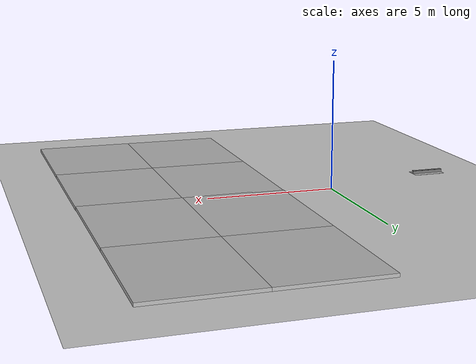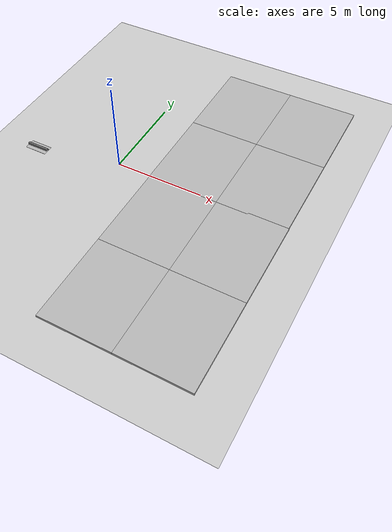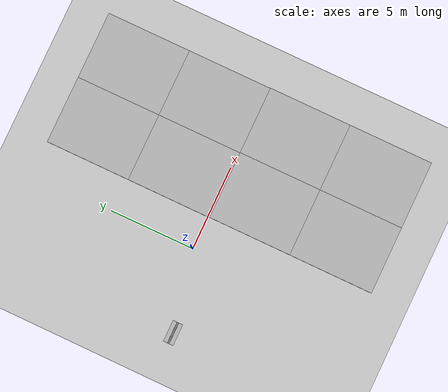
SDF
<sdf version="1.7">
 <world name="default">
  <light name="sun" type="directional">
   <pose>0 0 10 0 -0 0</pose>
   <diffuse>0.8 0.8 0.8 1</diffuse>
   <specular>0.2 0.2 0.2 1</specular>
   <attenuation>
    <range>1000</range>
    <constant>0.9</constant>
    <linear>0.01</linear>
    <quadratic>0.001</quadratic>
   </attenuation>
   <direction>-0.5 0.1 -0.9</direction>
   <spot><inner_angle>0</inner_angle><outer_angle>0</outer_angle><falloff>0</falloff></spot>
  </light>
  <model name="ground_plane">
   <static>1</static>
   <link name="link">
    <collision name="collision">
     <geometry><plane><normal>0 0 1</normal><size>100 100</size></plane></geometry>
     <surface><friction><ode><mu>100</mu><mu2>50</mu2></ode></friction></surface>
    </collision>
    <visual name="visual">
     <cast_shadows>0</cast_shadows>
     <geometry><plane><normal>0 0 1</normal><size>100 100</size></plane></geometry>
     <material>
      <script><uri>file://media/materials/scripts/gazebo.material</uri><name>Gazebo/Grey</name></script>
     </material>
    </visual>
   </link>
  </model>
  <gravity>0 0 -9.8</gravity>
  <magnetic_field>6e-06 2.3e-05 -4.2e-05</magnetic_field>
  <atmosphere type="adiabatic"/>
  <physics type="ode">
   <max_step_size>0.001</max_step_size>
   <real_time_factor>1</real_time_factor>
   <real_time_update_rate>1000</real_time_update_rate>
  </physics>
  <scene><ambient>0.4 0.4 0.4 1</ambient><background>0.7 0.7 0.7 1</background><shadows>1</shadows></scene>
  <audio><device>default</device></audio>
  <spherical_coordinates>
   <surface_model>EARTH_WGS84</surface_model>
   <latitude_deg>0</latitude_deg>
   <longitude_deg>0</longitude_deg>
   <elevation>0</elevation>
   <heading_deg>0</heading_deg>
  </spherical_coordinates>
  <model name="frc2016_rockwall">
   <static>1</static>
   <link name="link">
    <inertial>
     <mass>10</mass>
     <pose>0 0 0.08974 0 -0 0</pose>
     <inertia><ixx>0.327091</ixx><ixy>0</ixy><ixz>0</ixz><iyy>1.37417</iyy><iyz>0</iyz><izz>1.64109</izz></inertia>
    </inertial>
    <visual name="platform">
     <pose>0 0 0.06432 0 -0 0</pose>
     <geometry><box><size>1.27 0.5969 0.003175</size></box></geometry>
    </visual>
    <collision name="platform">
     <pose>0 0 0.06432 0 -0 0</pose>
     <geometry><box><size>1.27 0.5969 0.003175</size></box></geometry>
    </collision>
    <visual name="up1">
     <pose>0 0.05166 0.12537 0 -0 0</pose>
     <geometry><box><size>1.27 0.00462 0.11892</size></box></geometry>
     <material><ambient>0.46 0.46 0.46 1</ambient><diffuse>0.46 0.46 0.46 1</diffuse></material>
    </visual>
    <collision name="up1">
     <pose>0 0.05166 0.12537 0 -0 0</pose>
     <geometry><box><size>1.27 0.00462 0.11892</size></box></geometry>
    </collision>
    <visual name="up2">
     <pose>0 -0.05801 0.12537 0 -0 0</pose>
     <geometry><box><size>1.27 0.00462 0.11892</size></box></geometry>
     <material><ambient>0.46 0.46 0.46 1</ambient><diffuse>0.46 0.46 0.46 1</diffuse></material>
    </visual>
    <collision name="up2">
     <pose>0 -0.05801 0.12537 0 -0 0</pose>
     <geometry><box><size>1.27 0.00462 0.11892</size></box></geometry>
    </collision>
    <visual name="top">
     <pose>0 -0.00249 0.18252 0 -0 0</pose>
     <geometry><box><size>1.27 0.1143 0.00462</size></box></geometry>
     <material><ambient>0.46 0.46 0.46 1</ambient><diffuse>0.46 0.46 0.46 1</diffuse></material>
    </visual>
    <collision name="top">
     <pose>0 -0.00249 0.18252 0 -0 0</pose>
     <geometry><box><size>1.27 0.1143 0.00462</size></box></geometry>
    </collision>
   </link>
   <pose>-4.66303 -1.00216 0 0 -0 0</pose>
  </model>
  <model name="mud_box">
   <static>1</static>
   <link name="link">
    <collision name="collision"><geometry><box><size>8 10 0.2</size></box></geometry></collision>
    <visual name="visual_1">
     <pose>-2 2.5 0 0 -0 0</pose>
     <cast_shadows>0</cast_shadows>
     <geometry><box><size>4 5 0.2</size></box></geometry>
     <material>
      <script>
       <uri>model://mud_box/materials/scripts</uri>
       <uri>model://mud_box/materials/textures</uri>
       <name>vrc/mud</name>
      </script>
     </material>
    </visual>
    <visual name="visual_2">
     <pose>2 2.5 0 0 -0 0</pose>
     <cast_shadows>0</cast_shadows>
     <geometry><box><size>4 5 0.2</size></box></geometry>
     <material>
      <script>
       <uri>model://mud_box/materials/scripts</uri>
       <uri>model://mud_box/materials/textures</uri>
       <name>vrc/mud</name>
      </script>
     </material>
    </visual>
    <visual name="visual_3">
     <pose>2 -2.5 0 0 -0 0</pose>
     <cast_shadows>0</cast_shadows>
     <geometry><box><size>4 5 0.2</size></box></geometry>
     <material>
      <script>
       <uri>model://mud_box/materials/scripts</uri>
       <uri>model://mud_box/materials/textures</uri>
       <name>vrc/mud</name>
      </script>
     </material>
    </visual>
    <visual name="visual_4">
     <pose>-2 -2.5 0 0 -0 0</pose>
     <cast_shadows>0</cast_shadows>
     <geometry><box><size>4 5 0.2</size></box></geometry>
     <material>
      <script>
       <uri>model://mud_box/materials/scripts</uri>
       <uri>model://mud_box/materials/textures</uri>
       <name>vrc/mud</name>
      </script>
     </material>
    </visual>
   </link>
   <pose>5.96782 4.89938 0 0 -0 0</pose>
  </model>
  <model name="mud_box_0">
   <static>1</static>
   <link name="link">
    <collision name="collision"><geometry><box><size>8 10 0.2</size></box></geometry></collision>
    <visual name="visual_1">
     <pose>-2 2.5 0 0 -0 0</pose>
     <cast_shadows>0</cast_shadows>
     <geometry><box><size>4 5 0.2</size></box></geometry>
     <material>
      <script>
       <uri>model://mud_box/materials/scripts</uri>
       <uri>model://mud_box/materials/textures</uri>
       <name>vrc/mud</name>
      </script>
     </material>
    </visual>
    <visual name="visual_2">
     <pose>2 2.5 0 0 -0 0</pose>
     <cast_shadows>0</cast_shadows>
     <geometry><box><size>4 5 0.2</size></box></geometry>
     <material>
      <script>
       <uri>model://mud_box/materials/scripts</uri>
       <uri>model://mud_box/materials/textures</uri>
       <name>vrc/mud</name>
      </script>
     </material>
    </visual>
    <visual name="visual_3">
     <pose>2 -2.5 0 0 -0 0</pose>
     <cast_shadows>0</cast_shadows>
     <geometry><box><size>4 5 0.2</size></box></geometry>
     <material>
      <script>
       <uri>model://mud_box/materials/scripts</uri>
       <uri>model://mud_box/materials/textures</uri>
       <name>vrc/mud</name>
      </script>
     </material>
    </visual>
    <visual name="visual_4">
     <pose>-2 -2.5 0 0 -0 0</pose>
     <cast_shadows>0</cast_shadows>
     <geometry><box><size>4 5 0.2</size></box></geometry>
     <material>
      <script>
       <uri>model://mud_box/materials/scripts</uri>
       <uri>model://mud_box/materials/textures</uri>
       <name>vrc/mud</name>
      </script>
     </material>
    </visual>
   </link>
   <pose>5.98604 -5.01359 0 0 -0 0</pose>
  </model>
 </world>
</sdf>
